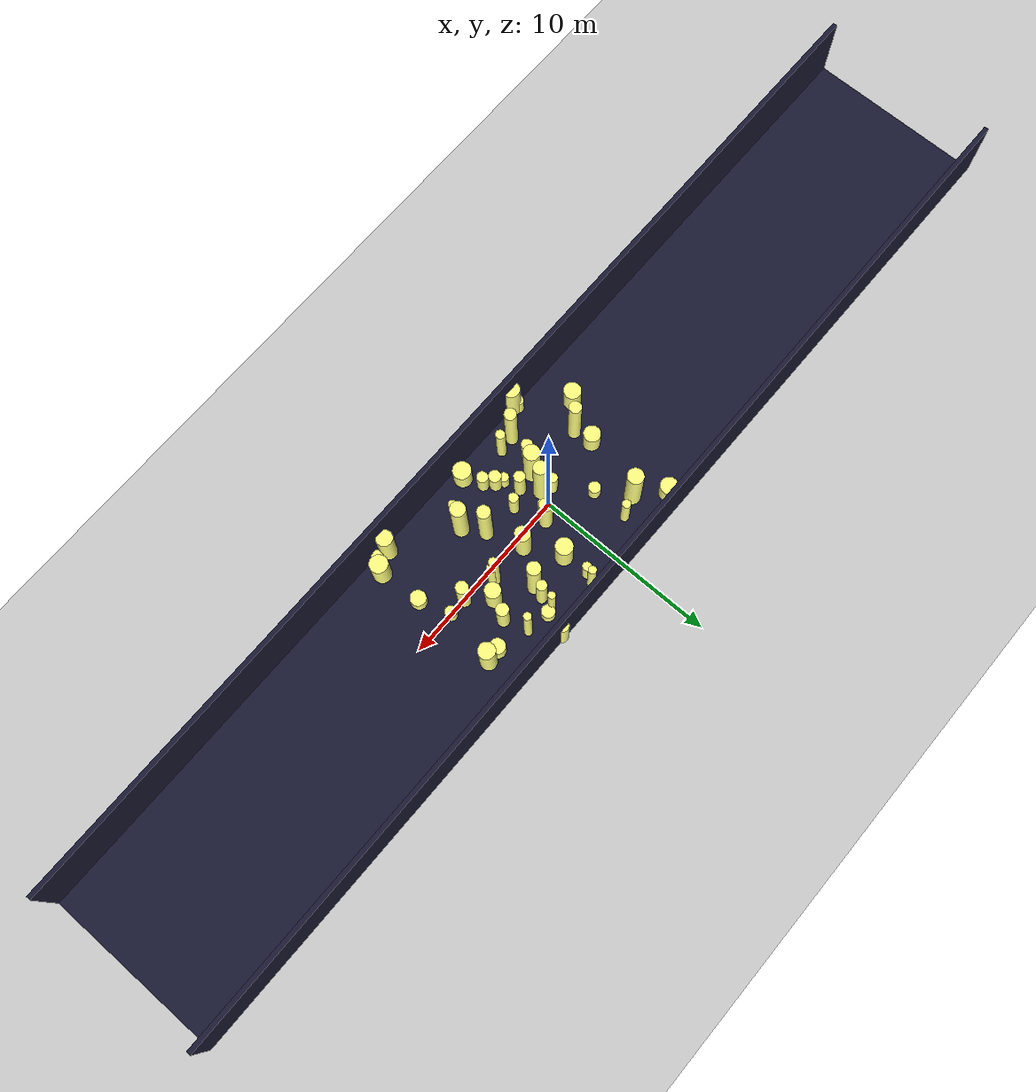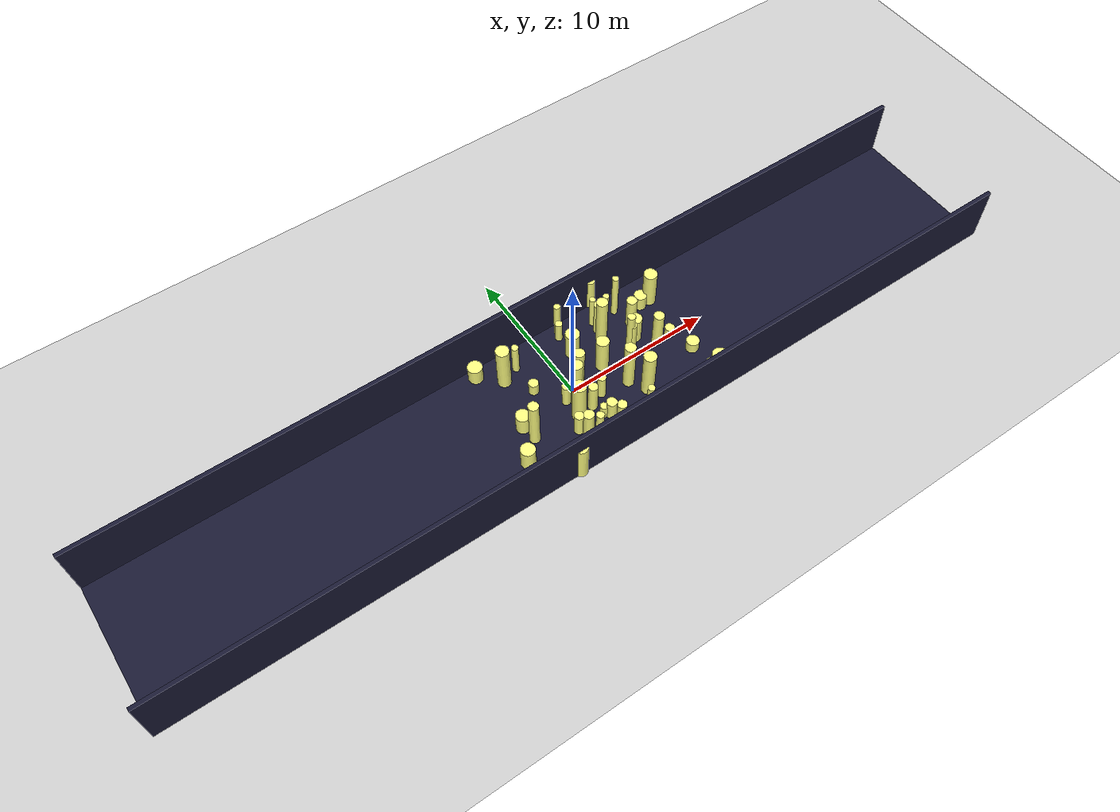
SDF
<sdf version="1.4">
 <world name="default">
  <include><uri>model://ground_plane</uri></include>
  <include><uri>model://sun</uri></include>
  <model name="forest">
   <static>true</static>
   <link name="cylinder5">
    <pose>-4.4134026240362445 4.272519568705716 0.6251129250226404 0 0 0</pose>
    <visual name="visual">
     <geometry>
      <cylinder><radius>0.48298032674248287</radius><length>1.2502258500452808</length></cylinder>
     </geometry>
     <material>
      <ambient>0.6 0.6 0.6 1</ambient>
      <diffuse>1 1 0.5 1</diffuse>
      <specular>0 0 0</specular>
      <emissive>0 0 0 1</emissive>
     </material>
    </visual>
    <collision name="collision">
     <geometry>
      <cylinder><radius>0.48298032674248287</radius><length>1.2502258500452808</length></cylinder>
     </geometry>
     <max_contacts>0</max_contacts>
    </collision>
   </link>
   <link name="cylinder6">
    <pose>4.462158580288072 3.7385799074985435 0.44079172515606957 0 0 0</pose>
    <visual name="visual">
     <geometry>
      <cylinder><radius>0.3588167858036847</radius><length>0.8815834503121391</length></cylinder>
     </geometry>
     <material>
      <ambient>0.6 0.6 0.6 1</ambient>
      <diffuse>1 1 0.5 1</diffuse>
      <specular>0 0 0</specular>
      <emissive>0 0 0 1</emissive>
     </material>
    </visual>
    <collision name="collision">
     <geometry>
      <cylinder><radius>0.3588167858036847</radius><length>0.8815834503121391</length></cylinder>
     </geometry>
     <max_contacts>0</max_contacts>
    </collision>
   </link>
   <link name="cylinder8">
    <pose>4.90252276802174 0.48921091091704927 1.2853089699839402 0 0 0</pose>
    <visual name="visual">
     <geometry>
      <cylinder><radius>0.2614693026425224</radius><length>2.5706179399678803</length></cylinder>
     </geometry>
     <material>
      <ambient>0.6 0.6 0.6 1</ambient>
      <diffuse>1 1 0.5 1</diffuse>
      <specular>0 0 0</specular>
      <emissive>0 0 0 1</emissive>
     </material>
    </visual>
    <collision name="collision">
     <geometry>
      <cylinder><radius>0.2614693026425224</radius><length>2.5706179399678803</length></cylinder>
     </geometry>
     <max_contacts>0</max_contacts>
    </collision>
   </link>
   <link name="cylinder10">
    <pose>0.35884433154932793 -1.6306497201837198 1.1159105243746459 0 0 0</pose>
    <visual name="visual">
     <geometry>
      <cylinder><radius>0.30563387176221746</radius><length>2.2318210487492918</length></cylinder>
     </geometry>
     <material>
      <ambient>0.6 0.6 0.6 1</ambient>
      <diffuse>1 1 0.5 1</diffuse>
      <specular>0 0 0</specular>
      <emissive>0 0 0 1</emissive>
     </material>
    </visual>
    <collision name="collision">
     <geometry>
      <cylinder><radius>0.30563387176221746</radius><length>2.2318210487492918</length></cylinder>
     </geometry>
     <max_contacts>0</max_contacts>
    </collision>
   </link>
   <link name="cylinder11">
    <pose>3.237439862645047 -1.4215264279106354 1.868700355015458 0 0 0</pose>
    <visual name="visual">
     <geometry>
      <cylinder><radius>0.36327619562679125</radius><length>3.737400710030916</length></cylinder>
     </geometry>
     <material>
      <ambient>0.6 0.6 0.6 1</ambient>
      <diffuse>1 1 0.5 1</diffuse>
      <specular>0 0 0</specular>
      <emissive>0 0 0 1</emissive>
     </material>
    </visual>
    <collision name="collision">
     <geometry>
      <cylinder><radius>0.36327619562679125</radius><length>3.737400710030916</length></cylinder>
     </geometry>
     <max_contacts>0</max_contacts>
    </collision>
   </link>
   <link name="cylinder12">
    <pose>2.612873712708769 0.5241438222223884 1.3351725123235476 0 0 0</pose>
    <visual name="visual">
     <geometry>
      <cylinder><radius>0.4195239390437968</radius><length>2.6703450246470952</length></cylinder>
     </geometry>
     <material>
      <ambient>0.6 0.6 0.6 1</ambient>
      <diffuse>1 1 0.5 1</diffuse>
      <specular>0 0 0</specular>
      <emissive>0 0 0 1</emissive>
     </material>
    </visual>
    <collision name="collision">
     <geometry>
      <cylinder><radius>0.4195239390437968</radius><length>2.6703450246470952</length></cylinder>
     </geometry>
     <max_contacts>0</max_contacts>
    </collision>
   </link>
   <link name="cylinder18">
    <pose>5.761139175603063 3.538941274273853 1.7364097716783282 0 0 0</pose>
    <visual name="visual">
     <geometry>
      <cylinder><radius>0.2109118705974057</radius><length>3.4728195433566564</length></cylinder>
     </geometry>
     <material>
      <ambient>0.6 0.6 0.6 1</ambient>
      <diffuse>1 1 0.5 1</diffuse>
      <specular>0 0 0</specular>
      <emissive>0 0 0 1</emissive>
     </material>
    </visual>
    <collision name="collision">
     <geometry>
      <cylinder><radius>0.2109118705974057</radius><length>3.4728195433566564</length></cylinder>
     </geometry>
     <max_contacts>0</max_contacts>
    </collision>
   </link>
   <link name="cylinder21">
    <pose>-0.7801931591326259 -0.42378372629529437 0.8790911549478188 0 0 0</pose>
    <visual name="visual">
     <geometry>
      <cylinder><radius>0.27697668428740363</radius><length>1.7581823098956375</length></cylinder>
     </geometry>
     <material>
      <ambient>0.6 0.6 0.6 1</ambient>
      <diffuse>1 1 0.5 1</diffuse>
      <specular>0 0 0</specular>
      <emissive>0 0 0 1</emissive>
     </material>
    </visual>
    <collision name="collision">
     <geometry>
      <cylinder><radius>0.27697668428740363</radius><length>1.7581823098956375</length></cylinder>
     </geometry>
     <max_contacts>0</max_contacts>
    </collision>
   </link>
   <link name="cylinder24">
    <pose>-3.018274304357611 -4.616674828413324 0.6000016276231543 0 0 0</pose>
    <visual name="visual">
     <geometry>
      <cylinder><radius>0.27451290789629884</radius><length>1.2000032552463087</length></cylinder>
     </geometry>
     <material>
      <ambient>0.6 0.6 0.6 1</ambient>
      <diffuse>1 1 0.5 1</diffuse>
      <specular>0 0 0</specular>
      <emissive>0 0 0 1</emissive>
     </material>
    </visual>
    <collision name="collision">
     <geometry>
      <cylinder><radius>0.27451290789629884</radius><length>1.2000032552463087</length></cylinder>
     </geometry>
     <max_contacts>0</max_contacts>
    </collision>
   </link>
   <link name="cylinder26">
    <pose>-1.5002499025637057 -3.789375244378266 1.7986329762283029 0 0 0</pose>
    <visual name="visual">
     <geometry>
      <cylinder><radius>0.3321129033527981</radius><length>3.5972659524566057</length></cylinder>
     </geometry>
     <material>
      <ambient>0.6 0.6 0.6 1</ambient>
      <diffuse>1 1 0.5 1</diffuse>
      <specular>0 0 0</specular>
      <emissive>0 0 0 1</emissive>
     </material>
    </visual>
    <collision name="collision">
     <geometry>
      <cylinder><radius>0.3321129033527981</radius><length>3.5972659524566057</length></cylinder>
     </geometry>
     <max_contacts>0</max_contacts>
    </collision>
   </link>
   <link name="cylinder28">
    <pose>1.324380870334501 -1.2024983633252875 0.9479656830783172 0 0 0</pose>
    <visual name="visual">
     <geometry>
      <cylinder><radius>0.2684165660967434</radius><length>1.8959313661566344</length></cylinder>
     </geometry>
     <material>
      <ambient>0.6 0.6 0.6 1</ambient>
      <diffuse>1 1 0.5 1</diffuse>
      <specular>0 0 0</specular>
      <emissive>0 0 0 1</emissive>
     </material>
    </visual>
    <collision name="collision">
     <geometry>
      <cylinder><radius>0.2684165660967434</radius><length>1.8959313661566344</length></cylinder>
     </geometry>
     <max_contacts>0</max_contacts>
    </collision>
   </link>
   <link name="cylinder30">
    <pose>8.130976952824462 -1.6403841777668173 0.4284824671894183 0 0 0</pose>
    <visual name="visual">
     <geometry>
      <cylinder><radius>0.42356399673454814</radius><length>0.8569649343788366</length></cylinder>
     </geometry>
     <material>
      <ambient>0.6 0.6 0.6 1</ambient>
      <diffuse>1 1 0.5 1</diffuse>
      <specular>0 0 0</specular>
      <emissive>0 0 0 1</emissive>
     </material>
    </visual>
    <collision name="collision">
     <geometry>
      <cylinder><radius>0.42356399673454814</radius><length>0.8569649343788366</length></cylinder>
     </geometry>
     <max_contacts>0</max_contacts>
    </collision>
   </link>
   <link name="cylinder33">
    <pose>4.006814596763224 2.9329232268723757 1.344608304612453 0 0 0</pose>
    <visual name="visual">
     <geometry>
      <cylinder><radius>0.28467719946347414</radius><length>2.689216609224906</length></cylinder>
     </geometry>
     <material>
      <ambient>0.6 0.6 0.6 1</ambient>
      <diffuse>1 1 0.5 1</diffuse>
      <specular>0 0 0</specular>
      <emissive>0 0 0 1</emissive>
     </material>
    </visual>
    <collision name="collision">
     <geometry>
      <cylinder><radius>0.28467719946347414</radius><length>2.689216609224906</length></cylinder>
     </geometry>
     <max_contacts>0</max_contacts>
    </collision>
   </link>
   <link name="cylinder35">
    <pose>7.598558792869461 0.04883102754331148 0.3924039694887407 0 0 0</pose>
    <visual name="visual">
     <geometry>
      <cylinder><radius>0.3150307945010926</radius><length>0.7848079389774814</length></cylinder>
     </geometry>
     <material>
      <ambient>0.6 0.6 0.6 1</ambient>
      <diffuse>1 1 0.5 1</diffuse>
      <specular>0 0 0</specular>
      <emissive>0 0 0 1</emissive>
     </material>
    </visual>
    <collision name="collision">
     <geometry>
      <cylinder><radius>0.3150307945010926</radius><length>0.7848079389774814</length></cylinder>
     </geometry>
     <max_contacts>0</max_contacts>
    </collision>
   </link>
   <link name="cylinder36">
    <pose>-1.3245627317411923 -2.574910769122596 0.862850663219632 0 0 0</pose>
    <visual name="visual">
     <geometry><cylinder><radius>0.305779836264553</radius><length>1.725701326439264</length></cylinder></geometry>
     <material>
      <ambient>0.6 0.6 0.6 1</ambient>
      <diffuse>1 1 0.5 1</diffuse>
      <specular>0 0 0</specular>
      <emissive>0 0 0 1</emissive>
     </material>
    </visual>
    <collision name="collision">
     <geometry><cylinder><radius>0.305779836264553</radius><length>1.725701326439264</length></cylinder></geometry>
     <max_contacts>0</max_contacts>
    </collision>
   </link>
   <link name="cylinder43">
    <pose>-2.8140881032985554 -4.883507203454016 1.3338616905762894 0 0 0</pose>
    <visual name="visual">
     <geometry>
      <cylinder><radius>0.4538561000798747</radius><length>2.667723381152579</length></cylinder>
     </geometry>
     <material>
      <ambient>0.6 0.6 0.6 1</ambient>
      <diffuse>1 1 0.5 1</diffuse>
      <specular>0 0 0</specular>
      <emissive>0 0 0 1</emissive>
     </material>
    </visual>
    <collision name="collision">
     <geometry>
      <cylinder><radius>0.4538561000798747</radius><length>2.667723381152579</length></cylinder>
     </geometry>
     <max_contacts>0</max_contacts>
    </collision>
   </link>
   <link name="cylinder46">
    <pose>4.0363057467295 3.6115315765122453 1.266204614728753 0 0 0</pose>
    <visual name="visual">
     <geometry>
      <cylinder><radius>0.2000358598801799</radius><length>2.532409229457506</length></cylinder>
     </geometry>
     <material>
      <ambient>0.6 0.6 0.6 1</ambient>
      <diffuse>1 1 0.5 1</diffuse>
      <specular>0 0 0</specular>
      <emissive>0 0 0 1</emissive>
     </material>
    </visual>
    <collision name="collision">
     <geometry>
      <cylinder><radius>0.2000358598801799</radius><length>2.532409229457506</length></cylinder>
     </geometry>
     <max_contacts>0</max_contacts>
    </collision>
   </link>
   <link name="cylinder48">
    <pose>3.4940067916993947 -3.376209781901729 0.7850246277640844 0 0 0</pose>
    <visual name="visual">
     <geometry>
      <cylinder><radius>0.23609696893940707</radius><length>1.5700492555281689</length></cylinder>
     </geometry>
     <material>
      <ambient>0.6 0.6 0.6 1</ambient>
      <diffuse>1 1 0.5 1</diffuse>
      <specular>0 0 0</specular>
      <emissive>0 0 0 1</emissive>
     </material>
    </visual>
    <collision name="collision">
     <geometry>
      <cylinder><radius>0.23609696893940707</radius><length>1.5700492555281689</length></cylinder>
     </geometry>
     <max_contacts>0</max_contacts>
    </collision>
   </link>
   <link name="cylinder51">
    <pose>7.453008317470058 3.014785782980379 0.5674534228045692 0 0 0</pose>
    <visual name="visual">
     <geometry>
      <cylinder><radius>0.4165605356632024</radius><length>1.1349068456091385</length></cylinder>
     </geometry>
     <material>
      <ambient>0.6 0.6 0.6 1</ambient>
      <diffuse>1 1 0.5 1</diffuse>
      <specular>0 0 0</specular>
      <emissive>0 0 0 1</emissive>
     </material>
    </visual>
    <collision name="collision">
     <geometry>
      <cylinder><radius>0.4165605356632024</radius><length>1.1349068456091385</length></cylinder>
     </geometry>
     <max_contacts>0</max_contacts>
    </collision>
   </link>
   <link name="cylinder54">
    <pose>4.792087568444771 0.5478734732690214 1.7378267213548098 0 0 0</pose>
    <visual name="visual">
     <geometry>
      <cylinder><radius>0.25570167026598545</radius><length>3.4756534427096195</length></cylinder>
     </geometry>
     <material>
      <ambient>0.6 0.6 0.6 1</ambient>
      <diffuse>1 1 0.5 1</diffuse>
      <specular>0 0 0</specular>
      <emissive>0 0 0 1</emissive>
     </material>
    </visual>
    <collision name="collision">
     <geometry>
      <cylinder><radius>0.25570167026598545</radius><length>3.4756534427096195</length></cylinder>
     </geometry>
     <max_contacts>0</max_contacts>
    </collision>
   </link>
   <link name="cylinder56">
    <pose>0.9669815386581888 -2.7677690655386655 0.726808501622217 0 0 0</pose>
    <visual name="visual">
     <geometry>
      <cylinder><radius>0.33462039784131126</radius><length>1.453617003244434</length></cylinder>
     </geometry>
     <material>
      <ambient>0.6 0.6 0.6 1</ambient>
      <diffuse>1 1 0.5 1</diffuse>
      <specular>0 0 0</specular>
      <emissive>0 0 0 1</emissive>
     </material>
    </visual>
    <collision name="collision">
     <geometry>
      <cylinder><radius>0.33462039784131126</radius><length>1.453617003244434</length></cylinder>
     </geometry>
     <max_contacts>0</max_contacts>
    </collision>
   </link>
   <link name="cylinder69">
    <pose>8.182481657789253 3.028143336266769 1.3707631539580123 0 0 0</pose>
    <visual name="visual">
     <geometry>
      <cylinder><radius>0.44738811300333886</radius><length>2.7415263079160246</length></cylinder>
     </geometry>
     <material>
      <ambient>0.6 0.6 0.6 1</ambient>
      <diffuse>1 1 0.5 1</diffuse>
      <specular>0 0 0</specular>
      <emissive>0 0 0 1</emissive>
     </material>
    </visual>
    <collision name="collision">
     <geometry>
      <cylinder><radius>0.44738811300333886</radius><length>2.7415263079160246</length></cylinder>
     </geometry>
     <max_contacts>0</max_contacts>
    </collision>
   </link>
   <link name="cylinder70">
    <pose>1.796002746810725 -4.2714859486758785 0.6865574981588731 0 0 0</pose>
    <visual name="visual">
     <geometry>
      <cylinder><radius>0.49511021562398916</radius><length>1.3731149963177463</length></cylinder>
     </geometry>
     <material>
      <ambient>0.6 0.6 0.6 1</ambient>
      <diffuse>1 1 0.5 1</diffuse>
      <specular>0 0 0</specular>
      <emissive>0 0 0 1</emissive>
     </material>
    </visual>
    <collision name="collision">
     <geometry>
      <cylinder><radius>0.49511021562398916</radius><length>1.3731149963177463</length></cylinder>
     </geometry>
     <max_contacts>0</max_contacts>
    </collision>
   </link>
   <link name="cylinder73">
    <pose>-3.995683587042002 -0.472348681355232 0.7190799258014486 0 0 0</pose>
    <visual name="visual">
     <geometry>
      <cylinder><radius>0.45662125217795596</radius><length>1.4381598516028973</length></cylinder>
     </geometry>
     <material>
      <ambient>0.6 0.6 0.6 1</ambient>
      <diffuse>1 1 0.5 1</diffuse>
      <specular>0 0 0</specular>
      <emissive>0 0 0 1</emissive>
     </material>
    </visual>
    <collision name="collision">
     <geometry>
      <cylinder><radius>0.45662125217795596</radius><length>1.4381598516028973</length></cylinder>
     </geometry>
     <max_contacts>0</max_contacts>
    </collision>
   </link>
   <link name="cylinder74">
    <pose>-0.7177941589082906 -1.7315996908681521 1.6684201366338898 0 0 0</pose>
    <visual name="visual">
     <geometry>
      <cylinder><radius>0.4455505133104054</radius><length>3.3368402732677795</length></cylinder>
     </geometry>
     <material>
      <ambient>0.6 0.6 0.6 1</ambient>
      <diffuse>1 1 0.5 1</diffuse>
      <specular>0 0 0</specular>
      <emissive>0 0 0 1</emissive>
     </material>
    </visual>
    <collision name="collision">
     <geometry>
      <cylinder><radius>0.4455505133104054</radius><length>3.3368402732677795</length></cylinder>
     </geometry>
     <max_contacts>0</max_contacts>
    </collision>
   </link>
   <link name="cylinder76">
    <pose>6.608196654810307 0.06205983774885926 1.375499346972646 0 0 0</pose>
    <visual name="visual">
     <geometry><cylinder><radius>0.341201046311804</radius><length>2.750998693945292</length></cylinder></geometry>
     <material>
      <ambient>0.6 0.6 0.6 1</ambient>
      <diffuse>1 1 0.5 1</diffuse>
      <specular>0 0 0</specular>
      <emissive>0 0 0 1</emissive>
     </material>
    </visual>
    <collision name="collision">
     <geometry><cylinder><radius>0.341201046311804</radius><length>2.750998693945292</length></cylinder></geometry>
     <max_contacts>0</max_contacts>
    </collision>
   </link>
   <link name="cylinder79">
    <pose>-1.9704321425102478 3.408793118519476 1.1661604450787557 0 0 0</pose>
    <visual name="visual">
     <geometry>
      <cylinder><radius>0.22945754236862473</radius><length>2.3323208901575114</length></cylinder>
     </geometry>
     <material>
      <ambient>0.6 0.6 0.6 1</ambient>
      <diffuse>1 1 0.5 1</diffuse>
      <specular>0 0 0</specular>
      <emissive>0 0 0 1</emissive>
     </material>
    </visual>
    <collision name="collision">
     <geometry>
      <cylinder><radius>0.22945754236862473</radius><length>2.3323208901575114</length></cylinder>
     </geometry>
     <max_contacts>0</max_contacts>
    </collision>
   </link>
   <link name="cylinder81">
    <pose>1.6527563996478882 2.402956885678859 1.038739803777551 0 0 0</pose>
    <visual name="visual">
     <geometry>
      <cylinder><radius>0.46864469099972966</radius><length>2.077479607555102</length></cylinder>
     </geometry>
     <material>
      <ambient>0.6 0.6 0.6 1</ambient>
      <diffuse>1 1 0.5 1</diffuse>
      <specular>0 0 0</specular>
      <emissive>0 0 0 1</emissive>
     </material>
    </visual>
    <collision name="collision">
     <geometry>
      <cylinder><radius>0.46864469099972966</radius><length>2.077479607555102</length></cylinder>
     </geometry>
     <max_contacts>0</max_contacts>
    </collision>
   </link>
   <link name="cylinder85">
    <pose>0.5876914910145814 -2.4980788151291278 0.4990992247703301 0 0 0</pose>
    <visual name="visual">
     <geometry>
      <cylinder><radius>0.25909123851012344</radius><length>0.9981984495406602</length></cylinder>
     </geometry>
     <material>
      <ambient>0.6 0.6 0.6 1</ambient>
      <diffuse>1 1 0.5 1</diffuse>
      <specular>0 0 0</specular>
      <emissive>0 0 0 1</emissive>
     </material>
    </visual>
    <collision name="collision">
     <geometry>
      <cylinder><radius>0.25909123851012344</radius><length>0.9981984495406602</length></cylinder>
     </geometry>
     <max_contacts>0</max_contacts>
    </collision>
   </link>
   <link name="cylinder88">
    <pose>7.164605998394627 -4.554432690878184 1.2693209339079423 0 0 0</pose>
    <visual name="visual">
     <geometry>
      <cylinder><radius>0.4395058581448192</radius><length>2.5386418678158846</length></cylinder>
     </geometry>
     <material>
      <ambient>0.6 0.6 0.6 1</ambient>
      <diffuse>1 1 0.5 1</diffuse>
      <specular>0 0 0</specular>
      <emissive>0 0 0 1</emissive>
     </material>
    </visual>
    <collision name="collision">
     <geometry>
      <cylinder><radius>0.4395058581448192</radius><length>2.5386418678158846</length></cylinder>
     </geometry>
     <max_contacts>0</max_contacts>
    </collision>
   </link>
   <link name="cylinder89">
    <pose>0.8084744233111465 0.48275625909388076 1.4613202914308228 0 0 0</pose>
    <visual name="visual">
     <geometry>
      <cylinder><radius>0.3537390983316461</radius><length>2.9226405828616455</length></cylinder>
     </geometry>
     <material>
      <ambient>0.6 0.6 0.6 1</ambient>
      <diffuse>1 1 0.5 1</diffuse>
      <specular>0 0 0</specular>
      <emissive>0 0 0 1</emissive>
     </material>
    </visual>
    <collision name="collision">
     <geometry>
      <cylinder><radius>0.3537390983316461</radius><length>2.9226405828616455</length></cylinder>
     </geometry>
     <max_contacts>0</max_contacts>
    </collision>
   </link>
   <link name="cylinder91">
    <pose>-0.6118157487596214 -3.716370909542197 1.3280150517622498 0 0 0</pose>
    <visual name="visual">
     <geometry>
      <cylinder><radius>0.2541754938028709</radius><length>2.6560301035244995</length></cylinder>
     </geometry>
     <material>
      <ambient>0.6 0.6 0.6 1</ambient>
      <diffuse>1 1 0.5 1</diffuse>
      <specular>0 0 0</specular>
      <emissive>0 0 0 1</emissive>
     </material>
    </visual>
    <collision name="collision">
     <geometry>
      <cylinder><radius>0.2541754938028709</radius><length>2.6560301035244995</length></cylinder>
     </geometry>
     <max_contacts>0</max_contacts>
    </collision>
   </link>
   <link name="cylinder93">
    <pose>-3.85817482980012 -1.533703604829142 1.8416292476886251 0 0 0</pose>
    <visual name="visual">
     <geometry>
      <cylinder><radius>0.33708694994868815</radius><length>3.6832584953772503</length></cylinder>
     </geometry>
     <material>
      <ambient>0.6 0.6 0.6 1</ambient>
      <diffuse>1 1 0.5 1</diffuse>
      <specular>0 0 0</specular>
      <emissive>0 0 0 1</emissive>
     </material>
    </visual>
    <collision name="collision">
     <geometry>
      <cylinder><radius>0.33708694994868815</radius><length>3.6832584953772503</length></cylinder>
     </geometry>
     <max_contacts>0</max_contacts>
    </collision>
   </link>
   <link name="cylinder99">
    <pose>-5.102594529498035 -2.717738716728263 0.8155592210002109 0 0 0</pose>
    <visual name="visual">
     <geometry>
      <cylinder><radius>0.47196442000652933</radius><length>1.6311184420004219</length></cylinder>
     </geometry>
     <material>
      <ambient>0.6 0.6 0.6 1</ambient>
      <diffuse>1 1 0.5 1</diffuse>
      <specular>0 0 0</specular>
      <emissive>0 0 0 1</emissive>
     </material>
    </visual>
    <collision name="collision">
     <geometry>
      <cylinder><radius>0.47196442000652933</radius><length>1.6311184420004219</length></cylinder>
     </geometry>
     <max_contacts>0</max_contacts>
    </collision>
   </link>
   <link name="cylinder101">
    <pose>6.107999299509949 2.2067703568877004 1.1939403368618513 0 0 0</pose>
    <visual name="visual">
     <geometry>
      <cylinder><radius>0.340956057492475</radius><length>2.3878806737237026</length></cylinder>
     </geometry>
     <material>
      <ambient>0.6 0.6 0.6 1</ambient>
      <diffuse>1 1 0.5 1</diffuse>
      <specular>0 0 0</specular>
      <emissive>0 0 0 1</emissive>
     </material>
    </visual>
    <collision name="collision">
     <geometry>
      <cylinder><radius>0.340956057492475</radius><length>2.3878806737237026</length></cylinder>
     </geometry>
     <max_contacts>0</max_contacts>
    </collision>
   </link>
   <link name="cylinder102">
    <pose>-1.9887312718388728 1.3795648998165895 0.47769970484026325 0 0 0</pose>
    <visual name="visual">
     <geometry>
      <cylinder><radius>0.32531567466868705</radius><length>0.9553994096805265</length></cylinder>
     </geometry>
     <material>
      <ambient>0.6 0.6 0.6 1</ambient>
      <diffuse>1 1 0.5 1</diffuse>
      <specular>0 0 0</specular>
      <emissive>0 0 0 1</emissive>
     </material>
    </visual>
    <collision name="collision">
     <geometry>
      <cylinder><radius>0.32531567466868705</radius><length>0.9553994096805265</length></cylinder>
     </geometry>
     <max_contacts>0</max_contacts>
    </collision>
   </link>
   <link name="cylinder109">
    <pose>3.9020002572720536 -2.5282102653056593 1.7767042596837483 0 0 0</pose>
    <visual name="visual">
     <geometry>
      <cylinder><radius>0.4136449963053447</radius><length>3.5534085193674967</length></cylinder>
     </geometry>
     <material>
      <ambient>0.6 0.6 0.6 1</ambient>
      <diffuse>1 1 0.5 1</diffuse>
      <specular>0 0 0</specular>
      <emissive>0 0 0 1</emissive>
     </material>
    </visual>
    <collision name="collision">
     <geometry>
      <cylinder><radius>0.4136449963053447</radius><length>3.5534085193674967</length></cylinder>
     </geometry>
     <max_contacts>0</max_contacts>
    </collision>
   </link>
   <link name="cylinder111">
    <pose>-0.22961748158914475 -0.737097181575054 1.985699915503919 0 0 0</pose>
    <visual name="visual">
     <geometry>
      <cylinder><radius>0.3837402597622426</radius><length>3.971399831007838</length></cylinder>
     </geometry>
     <material>
      <ambient>0.6 0.6 0.6 1</ambient>
      <diffuse>1 1 0.5 1</diffuse>
      <specular>0 0 0</specular>
      <emissive>0 0 0 1</emissive>
     </material>
    </visual>
    <collision name="collision">
     <geometry>
      <cylinder><radius>0.3837402597622426</radius><length>3.971399831007838</length></cylinder>
     </geometry>
     <max_contacts>0</max_contacts>
    </collision>
   </link>
   <link name="cylinder113">
    <pose>-3.0944147761310603 3.000847604576924 1.6742176984823263 0 0 0</pose>
    <visual name="visual">
     <geometry>
      <cylinder><radius>0.4389797043675061</radius><length>3.3484353969646525</length></cylinder>
     </geometry>
     <material>
      <ambient>0.6 0.6 0.6 1</ambient>
      <diffuse>1 1 0.5 1</diffuse>
      <specular>0 0 0</specular>
      <emissive>0 0 0 1</emissive>
     </material>
    </visual>
    <collision name="collision">
     <geometry>
      <cylinder><radius>0.4389797043675061</radius><length>3.3484353969646525</length></cylinder>
     </geometry>
     <max_contacts>0</max_contacts>
    </collision>
   </link>
   <link name="cylinder123">
    <pose>8.253463972166976 -4.017757975086848 1.0035824427848994 0 0 0</pose>
    <visual name="visual">
     <geometry>
      <cylinder><radius>0.49163958031945143</radius><length>2.0071648855697988</length></cylinder>
     </geometry>
     <material>
      <ambient>0.6 0.6 0.6 1</ambient>
      <diffuse>1 1 0.5 1</diffuse>
      <specular>0 0 0</specular>
      <emissive>0 0 0 1</emissive>
     </material>
    </visual>
    <collision name="collision">
     <geometry>
      <cylinder><radius>0.49163958031945143</radius><length>2.0071648855697988</length></cylinder>
     </geometry>
     <max_contacts>0</max_contacts>
    </collision>
   </link>
   <link name="cylinder125">
    <pose>5.877548583062559 4.610519539680427 0.24341030560708612 0 0 0</pose>
    <visual name="visual">
     <geometry>
      <cylinder><radius>0.21562219626703644</radius><length>0.48682061121417225</length></cylinder>
     </geometry>
     <material>
      <ambient>0.6 0.6 0.6 1</ambient>
      <diffuse>1 1 0.5 1</diffuse>
      <specular>0 0 0</specular>
      <emissive>0 0 0 1</emissive>
     </material>
    </visual>
    <collision name="collision">
     <geometry>
      <cylinder><radius>0.21562219626703644</radius><length>0.48682061121417225</length></cylinder>
     </geometry>
     <max_contacts>0</max_contacts>
    </collision>
   </link>
   <link name="cylinder130">
    <pose>1.6014598532212503 3.850888247201432 0.7948491947859715 0 0 0</pose>
    <visual name="visual">
     <geometry><cylinder><radius>0.240505478122976</radius><length>1.589698389571943</length></cylinder></geometry>
     <material>
      <ambient>0.6 0.6 0.6 1</ambient>
      <diffuse>1 1 0.5 1</diffuse>
      <specular>0 0 0</specular>
      <emissive>0 0 0 1</emissive>
     </material>
    </visual>
    <collision name="collision">
     <geometry><cylinder><radius>0.240505478122976</radius><length>1.589698389571943</length></cylinder></geometry>
     <max_contacts>0</max_contacts>
    </collision>
   </link>
   <link name="cylinder132">
    <pose>1.811474257185047 4.326930479324236 1.3450615242969812 0 0 0</pose>
    <visual name="visual">
     <geometry>
      <cylinder><radius>0.21742804910892197</radius><length>2.6901230485939625</length></cylinder>
     </geometry>
     <material>
      <ambient>0.6 0.6 0.6 1</ambient>
      <diffuse>1 1 0.5 1</diffuse>
      <specular>0 0 0</specular>
      <emissive>0 0 0 1</emissive>
     </material>
    </visual>
    <collision name="collision">
     <geometry>
      <cylinder><radius>0.21742804910892197</radius><length>2.6901230485939625</length></cylinder>
     </geometry>
     <max_contacts>0</max_contacts>
    </collision>
   </link>
   <link name="cylinder135">
    <pose>7.843072573975206 -4.638901867185284 0.5043812314713221 0 0 0</pose>
    <visual name="visual">
     <geometry>
      <cylinder><radius>0.28866600975074647</radius><length>1.0087624629426442</length></cylinder>
     </geometry>
     <material>
      <ambient>0.6 0.6 0.6 1</ambient>
      <diffuse>1 1 0.5 1</diffuse>
      <specular>0 0 0</specular>
      <emissive>0 0 0 1</emissive>
     </material>
    </visual>
    <collision name="collision">
     <geometry>
      <cylinder><radius>0.28866600975074647</radius><length>1.0087624629426442</length></cylinder>
     </geometry>
     <max_contacts>0</max_contacts>
    </collision>
   </link>
   <link name="cylinder140">
    <pose>4.840523239029427 4.985010821517349 1.2297184885806791 0 0 0</pose>
    <visual name="visual">
     <geometry>
      <cylinder><radius>0.31893942362718275</radius><length>2.4594369771613582</length></cylinder>
     </geometry>
     <material>
      <ambient>0.6 0.6 0.6 1</ambient>
      <diffuse>1 1 0.5 1</diffuse>
      <specular>0 0 0</specular>
      <emissive>0 0 0 1</emissive>
     </material>
    </visual>
    <collision name="collision">
     <geometry>
      <cylinder><radius>0.31893942362718275</radius><length>2.4594369771613582</length></cylinder>
     </geometry>
     <max_contacts>0</max_contacts>
    </collision>
   </link>
   <link name="cylinder142">
    <pose>5.627769186744501 1.1550133643632998 1.0084727367655666 0 0 0</pose>
    <visual name="visual">
     <geometry>
      <cylinder><radius>0.4299552681139895</radius><length>2.016945473531133</length></cylinder>
     </geometry>
     <material>
      <ambient>0.6 0.6 0.6 1</ambient>
      <diffuse>1 1 0.5 1</diffuse>
      <specular>0 0 0</specular>
      <emissive>0 0 0 1</emissive>
     </material>
    </visual>
    <collision name="collision">
     <geometry>
      <cylinder><radius>0.4299552681139895</radius><length>2.016945473531133</length></cylinder>
     </geometry>
     <max_contacts>0</max_contacts>
    </collision>
   </link>
   <link name="cylinder143">
    <pose>0.647755019201945 0.06835437198865169 0.9653845161950247 0 0 0</pose>
    <visual name="visual">
     <geometry>
      <cylinder><radius>0.20596297700897964</radius><length>1.9307690323900495</length></cylinder>
     </geometry>
     <material>
      <ambient>0.6 0.6 0.6 1</ambient>
      <diffuse>1 1 0.5 1</diffuse>
      <specular>0 0 0</specular>
      <emissive>0 0 0 1</emissive>
     </material>
    </visual>
    <collision name="collision">
     <geometry>
      <cylinder><radius>0.20596297700897964</radius><length>1.9307690323900495</length></cylinder>
     </geometry>
     <max_contacts>0</max_contacts>
    </collision>
   </link>
   <link name="cylinder144">
    <pose>1.4016695902395355 -3.236413858322913 0.7079836121727812 0 0 0</pose>
    <visual name="visual">
     <geometry>
      <cylinder><radius>0.3109182892748105</radius><length>1.4159672243455623</length></cylinder>
     </geometry>
     <material>
      <ambient>0.6 0.6 0.6 1</ambient>
      <diffuse>1 1 0.5 1</diffuse>
      <specular>0 0 0</specular>
      <emissive>0 0 0 1</emissive>
     </material>
    </visual>
    <collision name="collision">
     <geometry>
      <cylinder><radius>0.3109182892748105</radius><length>1.4159672243455623</length></cylinder>
     </geometry>
     <max_contacts>0</max_contacts>
    </collision>
   </link>
   <link name="cylinder145">
    <pose>3.820120939554865 2.2891156273245903 1.8979296061428363 0 0 0</pose>
    <visual name="visual">
     <geometry>
      <cylinder><radius>0.36680787105278356</radius><length>3.7958592122856727</length></cylinder>
     </geometry>
     <material>
      <ambient>0.6 0.6 0.6 1</ambient>
      <diffuse>1 1 0.5 1</diffuse>
      <specular>0 0 0</specular>
      <emissive>0 0 0 1</emissive>
     </material>
    </visual>
    <collision name="collision">
     <geometry>
      <cylinder><radius>0.36680787105278356</radius><length>3.7958592122856727</length></cylinder>
     </geometry>
     <max_contacts>0</max_contacts>
    </collision>
   </link>
   <link name="cube0">
    <pose>0 5.0 2.0 0 0 0</pose>
    <visual name="visual">
     <geometry><box><size>60.0 0.25 4.0</size></box></geometry>
     <material>
      <ambient>0.1 0.1 0.1 1</ambient>
      <diffuse>0.1 0.1 0.2 1</diffuse>
      <specular>0 0 0</specular>
      <emissive>0 0 0 1</emissive>
     </material>
    </visual>
    <collision name="collision">
     <geometry><box><size>60.0 0.25 4.0</size></box></geometry>
     <max_contacts>0</max_contacts>
    </collision>
   </link>
   <link name="cube1">
    <pose>0 -5.0 2.0 0 0 0</pose>
    <visual name="visual">
     <geometry><box><size>60.0 0.25 4.0</size></box></geometry>
     <material>
      <ambient>0.1 0.1 0.1 1</ambient>
      <diffuse>0.1 0.1 0.2 1</diffuse>
      <specular>0 0 0</specular>
      <emissive>0 0 0 1</emissive>
     </material>
    </visual>
    <collision name="collision">
     <geometry><box><size>60.0 0.25 4.0</size></box></geometry>
     <max_contacts>0</max_contacts>
    </collision>
   </link>
   <link name="cube2">
    <pose>0 0 0.03125 0 0 0</pose>
    <visual name="visual">
     <geometry><box><size>60.0 10 0.0625</size></box></geometry>
     <material>
      <ambient>0.1 0.1 0.1 1</ambient>
      <diffuse>0.1 0.1 0.2 1</diffuse>
      <specular>0 0 0</specular>
      <emissive>0 0 0 1</emissive>
     </material>
    </visual>
    <collision name="collision">
     <geometry><box><size>60.0 10 0.0625</size></box></geometry>
     <max_contacts>0</max_contacts>
    </collision>
   </link>
  </model>
 </world>
</sdf>
